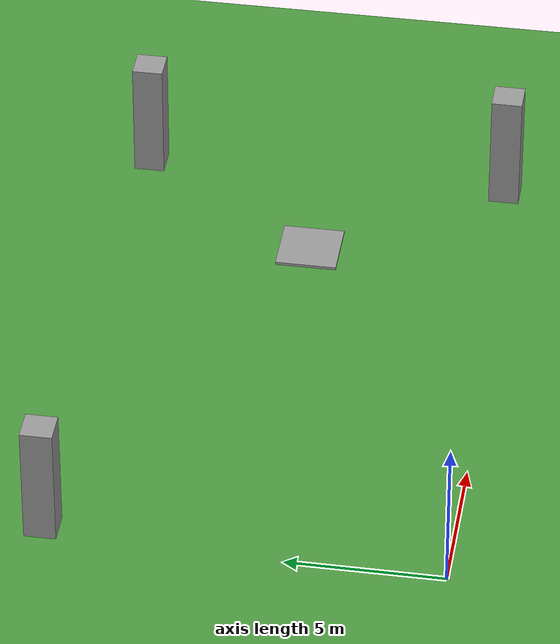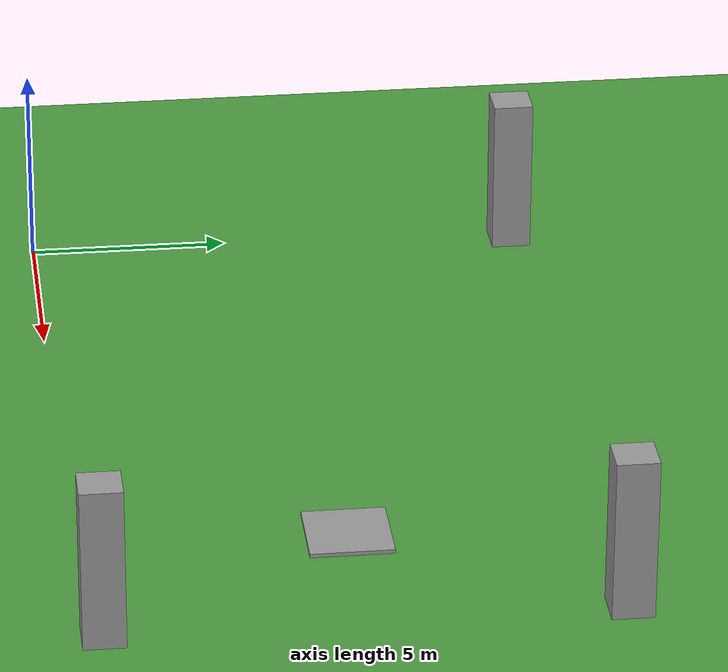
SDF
<sdf version="1.6">
 <world name="default">
  <light name="sun" type="directional">
   <pose>0 0 10 0 -0 0</pose>
   <diffuse>0.8 0.8 0.8 1</diffuse>
   <specular>0.1 0.1 0.1 1</specular>
   <attenuation>
    <range>1000</range>
    <constant>0.9</constant>
    <linear>0.01</linear>
    <quadratic>0.001</quadratic>
   </attenuation>
   <direction>-0.5 0.5 -1</direction>
  </light>
  <model name="ground_plane">
   <static>1</static>
   <link name="link">
    <collision name="collision">
     <geometry><plane><normal>0 0 1</normal><size>100 100</size></plane></geometry>
     <surface><friction><ode><mu>100</mu><mu2>50</mu2></ode></friction></surface>
    </collision>
    <visual name="visual">
     <cast_shadows>0</cast_shadows>
     <geometry><plane><normal>0 0 1</normal><size>100 100</size></plane></geometry>
     <material>
      <script><uri>file://media/materials/scripts/gazebo.material</uri><name>Gazebo/Grass</name></script>
     </material>
    </visual>
   </link>
  </model>
  <gravity>0 0 -9.8</gravity>
  <magnetic_field>6e-06 2.3e-05 -4.2e-05</magnetic_field>
  <atmosphere type="adiabatic"/>
  <physics name="default_physics" default="0" type="ode">
   <max_step_size>0.004</max_step_size>
   <real_time_factor>1</real_time_factor>
   <real_time_update_rate>250</real_time_update_rate>
  </physics>
  <scene>
   <ambient>0.4 0.4 0.4 1</ambient>
   <background>0.7 0.7 0.7 1</background>
   <shadows>1</shadows>
   <sky>
    <clouds>
     <speed>0.6</speed>
     <direction>0</direction>
     <humidity>0.5</humidity>
     <mean_size>0.5</mean_size>
     <ambient>0.8 0.8 0.8 1</ambient>
    </clouds>
   </sky>
  </scene>
  <spherical_coordinates>
   <surface_model>EARTH_WGS84</surface_model>
   <latitude_deg>0</latitude_deg>
   <longitude_deg>0</longitude_deg>
   <elevation>0</elevation>
   <heading_deg>0</heading_deg>
  </spherical_coordinates>
  <model name="wall">
   <pose>19.500000 0.500000 2 0 0 0</pose>
   <static>1</static>
   <link name="wall-link">
    <collision name="collision"><geometry><box><size>1 1 4</size></box></geometry></collision>
    <visual name="visual">
     <geometry><box><size>1 1 4</size></box></geometry>
     <material>
      <script><name>Gazebo/Grey</name><uri>file://media/materials/scripts/gazebo.material</uri></script>
     </material>
    </visual>
    <gravity>0</gravity>
   </link>
  </model>
  <model name="wall">
   <pose>0.500000 12.500000 2 0 0 0</pose>
   <static>1</static>
   <link name="wall-link">
    <collision name="collision"><geometry><box><size>1 1 4</size></box></geometry></collision>
    <visual name="visual">
     <geometry><box><size>1 1 4</size></box></geometry>
     <material>
      <script><name>Gazebo/Grey</name><uri>file://media/materials/scripts/gazebo.material</uri></script>
     </material>
    </visual>
    <gravity>0</gravity>
   </link>
  </model>
  <model name="wall">
   <pose>19.500000 12.500000 2 0 0 0</pose>
   <static>1</static>
   <link name="wall-link">
    <collision name="collision"><geometry><box><size>1 1 4</size></box></geometry></collision>
    <visual name="visual">
     <geometry><box><size>1 1 4</size></box></geometry>
     <material>
      <script><name>Gazebo/Grey</name><uri>file://media/materials/scripts/gazebo.material</uri></script>
     </material>
    </visual>
    <gravity>0</gravity>
   </link>
  </model>
  <model name="goal">
   <pose>15.5 6.5 0.05 0 -0 0</pose>
   <static>1</static>
   <link name="link">
    <collision name="collision"><geometry><box><size>2.0 2.0 0.1</size></box></geometry></collision>
    <visual name="visual">
     <geometry><box><size>2.0 2.0 0.1</size></box></geometry>
     <material>
      <script><name>Gazebo/Grey</name><uri>file://media/materials/scripts/gazebo.material</uri></script>
     </material>
    </visual>
   </link>
  </model>
 </world>
</sdf>
